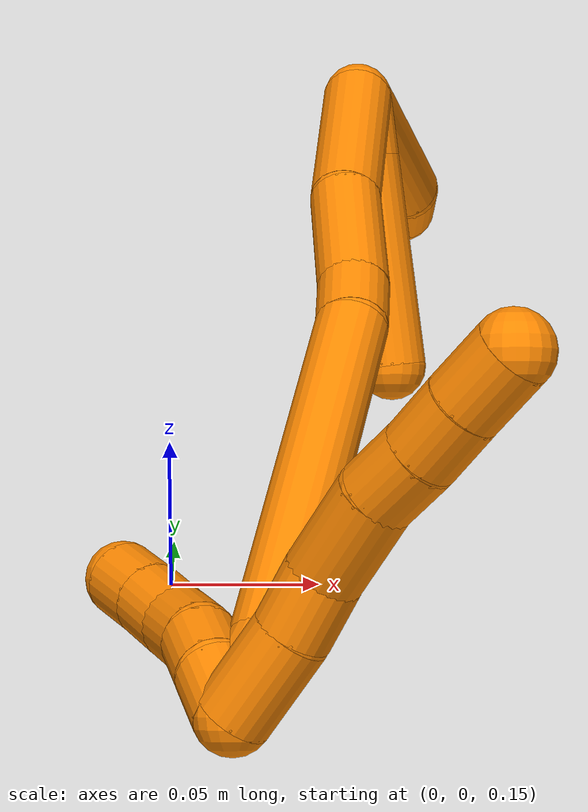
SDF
<sdf version="1.7">
 <world name="default">
  <model name="photoneo_s_sensor">
   <static>1</static>
   <pose>0 0 2 1.57079 1.57079 3.14159</pose>
   <link name="link">
    <inertial><mass>0.1</mass></inertial>
    <sensor name="sensor" type="depth">
     <update_rate>30</update_rate>
     <camera>
      <horizontal_fov>1.22</horizontal_fov>
      <image><width>1920</width><height>1200</height><format>B8G8R8</format></image>
      <clip><near>0.1</near><far>4</far></clip>
      <depth_camera><output>points</output></depth_camera>
     </camera>
     <plugin name="camera_plugin" filename="libgazebo_ros_depth_camera.so">
      <baseline>0.2</baseline>
      <alwaysOn>1</alwaysOn>
      <updateRate>0.0</updateRate>
      <cameraName>camera_ir</cameraName>
      <imageTopicName>/camera/color/image_raw</imageTopicName>
      <cameraInfoTopicName>/camera/color/camera_info</cameraInfoTopicName>
      <depthImageTopicName>/camera/depth/image_raw</depthImageTopicName>
      <depthImageCameraInfoTopicName>/camera/depth/camera_info</depthImageCameraInfoTopicName>
      <pointCloudTopicName>/camera/depth/points</pointCloudTopicName>
      <frameName>fr_optical</frameName>
      <pointCloudCutoff>0.1</pointCloudCutoff>
      <pointCloudCutoffMax>2.0</pointCloudCutoffMax>
      <distortionK1>0</distortionK1>
      <distortionK2>0</distortionK2>
      <distortionK3>0</distortionK3>
      <distortionT1>0</distortionT1>
      <distortionT2>0</distortionT2>
      <CxPrime>0</CxPrime>
      <Cx>0</Cx>
      <Cy>0</Cy>
      <focalLength>0</focalLength>
      <hackBaseline>0</hackBaseline>
     </plugin>
    </sensor>
   </link>
  </model>
  <model name="bin">
   <static>1</static>
   <link name="bottom">
    <collision name="collision-bottom">
     <pose>0 0 -0.01 0 -0 0</pose>
     <geometry><box><size>0.8 0.6 0.02</size></box></geometry>
     <surface>
      <friction><ode><mu>100</mu><mu2>100</mu2></ode></friction>
      <contact><collide_bitmask>65535</collide_bitmask></contact>
     </surface>
    </collision>
   </link>
   <link name="west_wall">
    <collision name="collision-west_wall">
     <pose>-0.41 0 0.1 0 -0 0</pose>
     <geometry><box><size>0.02 0.6 0.2</size></box></geometry>
     <surface>
      <friction><ode><mu>100</mu><mu2>100</mu2></ode></friction>
      <contact><collide_bitmask>65535</collide_bitmask></contact>
     </surface>
    </collision>
   </link>
   <link name="east_wall">
    <collision name="collision-east_wall">
     <pose>0.41 0 0.1 0 -0 0</pose>
     <geometry><box><size>0.02 0.6 0.2</size></box></geometry>
     <surface>
      <friction><ode><mu>100</mu><mu2>100</mu2></ode></friction>
      <contact><collide_bitmask>65535</collide_bitmask></contact>
     </surface>
    </collision>
   </link>
   <link name="south_wall">
    <collision name="collision-south_wall">
     <pose>0 -0.31 0.1 0 -0 0</pose>
     <geometry><box><size>0.8 0.02 0.2</size></box></geometry>
     <surface>
      <friction><ode><mu>100</mu><mu2>100</mu2></ode></friction>
      <contact><collide_bitmask>65535</collide_bitmask></contact>
     </surface>
    </collision>
   </link>
   <link name="north_wall">
    <collision name="collision-north_wall">
     <pose>0 0.31 0.1 0 -0 0</pose>
     <geometry><box><size>0.8 0.02 0.2</size></box></geometry>
     <surface>
      <friction><ode><mu>100</mu><mu2>100</mu2></ode></friction>
      <contact><collide_bitmask>65535</collide_bitmask></contact>
     </surface>
    </collision>
   </link>
  </model>
  <model name="19">
   <static>0</static>
   <link name="19">
    <collision name="collision-cylinder-e_1_2_8">
     <pose>0.010278 -0.002223 0.012351 0.178087 0.686203 0.063765</pose>
     <geometry><cylinder><radius>0.0125</radius><length>0.032442</length></cylinder></geometry>
     <surface>
      <friction><ode><mu>1.16</mu><mu2>1.16</mu2><slip1>0</slip1><slip2>0</slip2></ode></friction>
      <contact><ode><kp>1e+06</kp><kd>1</kd><max_vel>0</max_vel><min_depth>0.001</min_depth></ode></contact>
     </surface>
    </collision>
    <visual name="visual-cylinder-e_1_2_8">
     <pose>0.010278 -0.002223 0.012351 0.178087 0.686203 0.063765</pose>
     <geometry><cylinder><radius>0.0125</radius><length>0.032442</length></cylinder></geometry>
     <material><ambient>0.996078 0.537255 0 1</ambient></material>
    </visual>
    <collision name="collision-cylinder-e_2_8_9">
     <pose>0.026223 -0.006029 0.033402 0.180018 0.570023 0.052874</pose>
     <geometry><cylinder><radius>0.0125</radius><length>0.021007</length></cylinder></geometry>
     <surface>
      <friction><ode><mu>1.16</mu><mu2>1.16</mu2><slip1>0</slip1><slip2>0</slip2></ode></friction>
      <contact><ode><kp>1e+06</kp><kd>1</kd><max_vel>0</max_vel><min_depth>0.001</min_depth></ode></contact>
     </surface>
    </collision>
    <visual name="visual-cylinder-e_2_8_9">
     <pose>0.026223 -0.006029 0.033402 0.180018 0.570023 0.052874</pose>
     <geometry><cylinder><radius>0.0125</radius><length>0.021007</length></cylinder></geometry>
     <material><ambient>0.996078 0.537255 0 1</ambient></material>
    </visual>
    <collision name="collision-cylinder-e_3_9_10">
     <pose>0.042063 -0.013654 0.05333 0.493659 0.67336 0.175925</pose>
     <geometry><cylinder><radius>0.0125</radius><length>0.03262</length></cylinder></geometry>
     <surface>
      <friction><ode><mu>1.16</mu><mu2>1.16</mu2><slip1>0</slip1><slip2>0</slip2></ode></friction>
      <contact><ode><kp>1e+06</kp><kd>1</kd><max_vel>0</max_vel><min_depth>0.001</min_depth></ode></contact>
     </surface>
    </collision>
    <visual name="visual-cylinder-e_3_9_10">
     <pose>0.042063 -0.013654 0.05333 0.493659 0.67336 0.175925</pose>
     <geometry><cylinder><radius>0.0125</radius><length>0.03262</length></cylinder></geometry>
     <material><ambient>0.996078 0.537255 0 1</ambient></material>
    </visual>
    <collision name="collision-cylinder-e_4_10_11">
     <pose>0.060001 -0.022875 0.070379 0.499763 0.863955 0.234241</pose>
     <geometry><cylinder><radius>0.0125</radius><length>0.020427</length></cylinder></geometry>
     <surface>
      <friction><ode><mu>1.16</mu><mu2>1.16</mu2><slip1>0</slip1><slip2>0</slip2></ode></friction>
      <contact><ode><kp>1e+06</kp><kd>1</kd><max_vel>0</max_vel><min_depth>0.001</min_depth></ode></contact>
     </surface>
    </collision>
    <visual name="visual-cylinder-e_4_10_11">
     <pose>0.060001 -0.022875 0.070379 0.499763 0.863955 0.234241</pose>
     <geometry><cylinder><radius>0.0125</radius><length>0.020427</length></cylinder></geometry>
     <material><ambient>0.996078 0.537255 0 1</ambient></material>
    </visual>
    <collision name="collision-cylinder-e_5_11_12">
     <pose>0.075152 -0.029206 0.082787 0.446409 0.791041 0.18898</pose>
     <geometry><cylinder><radius>0.0125</radius><length>0.020771</length></cylinder></geometry>
     <surface>
      <friction><ode><mu>1.16</mu><mu2>1.16</mu2><slip1>0</slip1><slip2>0</slip2></ode></friction>
      <contact><ode><kp>1e+06</kp><kd>1</kd><max_vel>0</max_vel><min_depth>0.001</min_depth></ode></contact>
     </surface>
    </collision>
    <visual name="visual-cylinder-e_5_11_12">
     <pose>0.075152 -0.029206 0.082787 0.446409 0.791041 0.18898</pose>
     <geometry><cylinder><radius>0.0125</radius><length>0.020771</length></cylinder></geometry>
     <material><ambient>0.996078 0.537255 0 1</ambient></material>
    </visual>
    <collision name="collision-cylinder-e_6_12_6">
     <pose>0.0908 -0.035357 0.09658 0.394264 0.813865 0.171736</pose>
     <geometry><cylinder><radius>0.0125</radius><length>0.022733</length></cylinder></geometry>
     <surface>
      <friction><ode><mu>1.16</mu><mu2>1.16</mu2><slip1>0</slip1><slip2>0</slip2></ode></friction>
      <contact><ode><kp>1e+06</kp><kd>1</kd><max_vel>0</max_vel><min_depth>0.001</min_depth></ode></contact>
     </surface>
    </collision>
    <visual name="visual-cylinder-e_6_12_6">
     <pose>0.0908 -0.035357 0.09658 0.394264 0.813865 0.171736</pose>
     <geometry><cylinder><radius>0.0125</radius><length>0.022733</length></cylinder></geometry>
     <material><ambient>0.996078 0.537255 0 1</ambient></material>
    </visual>
    <collision name="collision-cylinder-e_1_2_13">
     <pose>-0.005177 0.005877 0.006217 -0.757299 -0.544128 0.221079</pose>
     <geometry><cylinder><radius>0.0125</radius><length>0.02</length></cylinder></geometry>
     <surface>
      <friction><ode><mu>1.16</mu><mu2>1.16</mu2><slip1>0</slip1><slip2>0</slip2></ode></friction>
      <contact><ode><kp>1e+06</kp><kd>1</kd><max_vel>0</max_vel><min_depth>0.001</min_depth></ode></contact>
     </surface>
    </collision>
    <visual name="visual-cylinder-e_1_2_13">
     <pose>-0.005177 0.005877 0.006217 -0.757299 -0.544128 0.221079</pose>
     <geometry><cylinder><radius>0.0125</radius><length>0.02</length></cylinder></geometry>
     <material><ambient>0.996078 0.537255 0 1</ambient></material>
    </visual>
    <collision name="collision-cylinder-e_2_13_14">
     <pose>-0.015445 0.018852 0.017304 -0.969454 -0.534157 0.28622</pose>
     <geometry><cylinder><radius>0.0125</radius><length>0.02</length></cylinder></geometry>
     <surface>
      <friction><ode><mu>1.16</mu><mu2>1.16</mu2><slip1>0</slip1><slip2>0</slip2></ode></friction>
      <contact><ode><kp>1e+06</kp><kd>1</kd><max_vel>0</max_vel><min_depth>0.001</min_depth></ode></contact>
     </surface>
    </collision>
    <visual name="visual-cylinder-e_2_13_14">
     <pose>-0.015445 0.018852 0.017304 -0.969454 -0.534157 0.28622</pose>
     <geometry><cylinder><radius>0.0125</radius><length>0.02</length></cylinder></geometry>
     <material><ambient>0.996078 0.537255 0 1</ambient></material>
    </visual>
    <collision name="collision-cylinder-e_3_14_15">
     <pose>-0.026922 0.033214 0.024712 -1.23471 -0.692679 0.501615</pose>
     <geometry><cylinder><radius>0.0125</radius><length>0.02</length></cylinder></geometry>
     <surface>
      <friction><ode><mu>1.16</mu><mu2>1.16</mu2><slip1>0</slip1><slip2>0</slip2></ode></friction>
      <contact><ode><kp>1e+06</kp><kd>1</kd><max_vel>0</max_vel><min_depth>0.001</min_depth></ode></contact>
     </surface>
    </collision>
    <visual name="visual-cylinder-e_3_14_15">
     <pose>-0.026922 0.033214 0.024712 -1.23471 -0.692679 0.501615</pose>
     <geometry><cylinder><radius>0.0125</radius><length>0.02</length></cylinder></geometry>
     <material><ambient>0.996078 0.537255 0 1</ambient></material>
    </visual>
    <collision name="collision-cylinder-e_4_15_16">
     <pose>-0.040396 0.046494 0.030934 -1.02119 -0.787852 0.457497</pose>
     <geometry><cylinder><radius>0.0125</radius><length>0.02</length></cylinder></geometry>
     <surface>
      <friction><ode><mu>1.16</mu><mu2>1.16</mu2><slip1>0</slip1><slip2>0</slip2></ode></friction>
      <contact><ode><kp>1e+06</kp><kd>1</kd><max_vel>0</max_vel><min_depth>0.001</min_depth></ode></contact>
     </surface>
    </collision>
    <visual name="visual-cylinder-e_4_15_16">
     <pose>-0.040396 0.046494 0.030934 -1.02119 -0.787852 0.457497</pose>
     <geometry><cylinder><radius>0.0125</radius><length>0.02</length></cylinder></geometry>
     <material><ambient>0.996078 0.537255 0 1</ambient></material>
    </visual>
    <collision name="collision-cylinder-e_5_16_5">
     <pose>-0.054818 0.058333 0.038125 -1.02879 -0.82328 0.4838</pose>
     <geometry><cylinder><radius>0.0125</radius><length>0.02</length></cylinder></geometry>
     <surface>
      <friction><ode><mu>1.16</mu><mu2>1.16</mu2><slip1>0</slip1><slip2>0</slip2></ode></friction>
      <contact><ode><kp>1e+06</kp><kd>1</kd><max_vel>0</max_vel><min_depth>0.001</min_depth></ode></contact>
     </surface>
    </collision>
    <visual name="visual-cylinder-e_5_16_5">
     <pose>-0.054818 0.058333 0.038125 -1.02879 -0.82328 0.4838</pose>
     <geometry><cylinder><radius>0.0125</radius><length>0.02</length></cylinder></geometry>
     <material><ambient>0.996078 0.537255 0 1</ambient></material>
    </visual>
    <collision name="collision-cylinder-e_1_2_17">
     <pose>0.001271 0.011424 0.010228 -0.840574 0.082672 -0.036964</pose>
     <geometry><cylinder><radius>0.0125</radius><length>0.030772</length></cylinder></geometry>
     <surface>
      <friction><ode><mu>1.16</mu><mu2>1.16</mu2><slip1>0</slip1><slip2>0</slip2></ode></friction>
      <contact><ode><kp>1e+06</kp><kd>1</kd><max_vel>0</max_vel><min_depth>0.001</min_depth></ode></contact>
     </surface>
    </collision>
    <visual name="visual-cylinder-e_1_2_17">
     <pose>0.001271 0.011424 0.010228 -0.840574 0.082672 -0.036964</pose>
     <geometry><cylinder><radius>0.0125</radius><length>0.030772</length></cylinder></geometry>
     <material><ambient>0.996078 0.537255 0 1</ambient></material>
    </visual>
    <collision name="collision-cylinder-e_2_17_18">
     <pose>0.00193 0.067509 0.073453 -0.700251 -0.008819 0.00322</pose>
     <geometry><cylinder><radius>0.0125</radius><length>0.138617</length></cylinder></geometry>
     <surface>
      <friction><ode><mu>1.16</mu><mu2>1.16</mu2><slip1>0</slip1><slip2>0</slip2></ode></friction>
      <contact><ode><kp>1e+06</kp><kd>1</kd><max_vel>0</max_vel><min_depth>0.001</min_depth></ode></contact>
     </surface>
    </collision>
    <visual name="visual-cylinder-e_2_17_18">
     <pose>0.00193 0.067509 0.073453 -0.700251 -0.008819 0.00322</pose>
     <geometry><cylinder><radius>0.0125</radius><length>0.138617</length></cylinder></geometry>
     <material><ambient>0.996078 0.537255 0 1</ambient></material>
    </visual>
    <collision name="collision-cylinder-e_3_18_19">
     <pose>-0.000678 0.119306 0.133658 -0.780349 -0.194389 0.080154</pose>
     <geometry><cylinder><radius>0.0125</radius><length>0.020676</length></cylinder></geometry>
     <surface>
      <friction><ode><mu>1.16</mu><mu2>1.16</mu2><slip1>0</slip1><slip2>0</slip2></ode></friction>
      <contact><ode><kp>1e+06</kp><kd>1</kd><max_vel>0</max_vel><min_depth>0.001</min_depth></ode></contact>
     </surface>
    </collision>
    <visual name="visual-cylinder-e_3_18_19">
     <pose>-0.000678 0.119306 0.133658 -0.780349 -0.194389 0.080154</pose>
     <geometry><cylinder><radius>0.0125</radius><length>0.020676</length></cylinder></geometry>
     <material><ambient>0.996078 0.537255 0 1</ambient></material>
    </visual>
    <collision name="collision-cylinder-e_4_19_20">
     <pose>-0.008682 0.140467 0.158136 -0.682081 -0.263725 0.094075</pose>
     <geometry><cylinder><radius>0.0125</radius><length>0.046087</length></cylinder></geometry>
     <surface>
      <friction><ode><mu>1.16</mu><mu2>1.16</mu2><slip1>0</slip1><slip2>0</slip2></ode></friction>
      <contact><ode><kp>1e+06</kp><kd>1</kd><max_vel>0</max_vel><min_depth>0.001</min_depth></ode></contact>
     </surface>
    </collision>
    <visual name="visual-cylinder-e_4_19_20">
     <pose>-0.008682 0.140467 0.158136 -0.682081 -0.263725 0.094075</pose>
     <geometry><cylinder><radius>0.0125</radius><length>0.046087</length></cylinder></geometry>
     <material><ambient>0.996078 0.537255 0 1</ambient></material>
    </visual>
    <collision name="collision-cylinder-e_5_20_1">
     <pose>-0.019785 0.177199 0.197258 -0.804595 -0.160317 0.068335</pose>
     <geometry><cylinder><radius>0.0125</radius><length>0.063848</length></cylinder></geometry>
     <surface>
      <friction><ode><mu>1.16</mu><mu2>1.16</mu2><slip1>0</slip1><slip2>0</slip2></ode></friction>
      <contact><ode><kp>1e+06</kp><kd>1</kd><max_vel>0</max_vel><min_depth>0.001</min_depth></ode></contact>
     </surface>
    </collision>
    <visual name="visual-cylinder-e_5_20_1">
     <pose>-0.019785 0.177199 0.197258 -0.804595 -0.160317 0.068335</pose>
     <geometry><cylinder><radius>0.0125</radius><length>0.063848</length></cylinder></geometry>
     <material><ambient>0.996078 0.537255 0 1</ambient></material>
    </visual>
    <collision name="collision-cylinder-e_1_1_21">
     <pose>-0.023794 0.200888 0.207882 -3.05448 0.096209 -1.67007</pose>
     <geometry><cylinder><radius>0.0125</radius><length>0.022647</length></cylinder></geometry>
     <surface>
      <friction><ode><mu>1.16</mu><mu2>1.16</mu2><slip1>0</slip1><slip2>0</slip2></ode></friction>
      <contact><ode><kp>1e+06</kp><kd>1</kd><max_vel>0</max_vel><min_depth>0.001</min_depth></ode></contact>
     </surface>
    </collision>
    <visual name="visual-cylinder-e_1_1_21">
     <pose>-0.023794 0.200888 0.207882 -3.05448 0.096209 -1.67007</pose>
     <geometry><cylinder><radius>0.0125</radius><length>0.022647</length></cylinder></geometry>
     <material><ambient>0.996078 0.537255 0 1</ambient></material>
    </visual>
    <collision name="collision-cylinder-e_2_21_4">
     <pose>-0.018989 0.205286 0.158308 -3.05272 0.096254 -1.65056</pose>
     <geometry><cylinder><radius>0.0125</radius><length>0.077353</length></cylinder></geometry>
     <surface>
      <friction><ode><mu>1.16</mu><mu2>1.16</mu2><slip1>0</slip1><slip2>0</slip2></ode></friction>
      <contact><ode><kp>1e+06</kp><kd>1</kd><max_vel>0</max_vel><min_depth>0.001</min_depth></ode></contact>
     </surface>
    </collision>
    <visual name="visual-cylinder-e_2_21_4">
     <pose>-0.018989 0.205286 0.158308 -3.05272 0.096254 -1.65056</pose>
     <geometry><cylinder><radius>0.0125</radius><length>0.077353</length></cylinder></geometry>
     <material><ambient>0.996078 0.537255 0 1</ambient></material>
    </visual>
    <collision name="collision-cylinder-e_1_1_22">
     <pose>-0.026846 0.235712 0.206777 -1.90251 -0.051844 0.072675</pose>
     <geometry><cylinder><radius>0.0125</radius><length>0.075841</length></cylinder></geometry>
     <surface>
      <friction><ode><mu>1.16</mu><mu2>1.16</mu2><slip1>0</slip1><slip2>0</slip2></ode></friction>
      <contact><ode><kp>1e+06</kp><kd>1</kd><max_vel>0</max_vel><min_depth>0.001</min_depth></ode></contact>
     </surface>
    </collision>
    <visual name="visual-cylinder-e_1_1_22">
     <pose>-0.026846 0.235712 0.206777 -1.90251 -0.051844 0.072675</pose>
     <geometry><cylinder><radius>0.0125</radius><length>0.075841</length></cylinder></geometry>
     <material><ambient>0.996078 0.537255 0 1</ambient></material>
    </visual>
    <collision name="collision-cylinder-e_2_22_3">
     <pose>-0.033066 0.282509 0.191797 -1.80716 -0.359917 0.453942</pose>
     <geometry><cylinder><radius>0.0125</radius><length>0.024159</length></cylinder></geometry>
     <surface>
      <friction><ode><mu>1.16</mu><mu2>1.16</mu2><slip1>0</slip1><slip2>0</slip2></ode></friction>
      <contact><ode><kp>1e+06</kp><kd>1</kd><max_vel>0</max_vel><min_depth>0.001</min_depth></ode></contact>
     </surface>
    </collision>
    <visual name="visual-cylinder-e_2_22_3">
     <pose>-0.033066 0.282509 0.191797 -1.80716 -0.359917 0.453942</pose>
     <geometry><cylinder><radius>0.0125</radius><length>0.024159</length></cylinder></geometry>
     <material><ambient>0.996078 0.537255 0 1</ambient></material>
    </visual>
    <collision name="collision-sphere-3">
     <pose>-0.03732 0.2935 0.189149 0 -0 0</pose>
     <geometry><sphere><radius>0.0125</radius></sphere></geometry>
     <surface>
      <friction><ode><mu>1.16</mu><mu2>1.16</mu2><slip1>0</slip1><slip2>0</slip2></ode></friction>
      <contact><ode><kp>1e+06</kp><kd>1</kd><max_vel>0</max_vel><min_depth>0.001</min_depth></ode></contact>
     </surface>
    </collision>
    <visual name="visual-sphere-3">
     <pose>-0.03732 0.2935 0.189149 0 -0 0</pose>
     <geometry><sphere><radius>0.0125</radius></sphere></geometry>
     <material><ambient>0.996078 0.537255 0 1</ambient></material>
    </visual>
    <collision name="collision-sphere-22">
     <pose>-0.028811 0.271517 0.194444 0 -0 0</pose>
     <geometry><sphere><radius>0.0125</radius></sphere></geometry>
     <surface>
      <friction><ode><mu>1.16</mu><mu2>1.16</mu2><slip1>0</slip1><slip2>0</slip2></ode></friction>
      <contact><ode><kp>1e+06</kp><kd>1</kd><max_vel>0</max_vel><min_depth>0.001</min_depth></ode></contact>
     </surface>
    </collision>
    <visual name="visual-sphere-22">
     <pose>-0.028811 0.271517 0.194444 0 -0 0</pose>
     <geometry><sphere><radius>0.0125</radius></sphere></geometry>
     <material><ambient>0.996078 0.537255 0 1</ambient></material>
    </visual>
    <collision name="collision-sphere-4">
     <pose>-0.015272 0.208703 0.119962 0 -0 0</pose>
     <geometry><sphere><radius>0.0125</radius></sphere></geometry>
     <surface>
      <friction><ode><mu>1.16</mu><mu2>1.16</mu2><slip1>0</slip1><slip2>0</slip2></ode></friction>
      <contact><ode><kp>1e+06</kp><kd>1</kd><max_vel>0</max_vel><min_depth>0.001</min_depth></ode></contact>
     </surface>
    </collision>
    <visual name="visual-sphere-4">
     <pose>-0.015272 0.208703 0.119962 0 -0 0</pose>
     <geometry><sphere><radius>0.0125</radius></sphere></geometry>
     <material><ambient>0.996078 0.537255 0 1</ambient></material>
    </visual>
    <collision name="collision-sphere-21">
     <pose>-0.022706 0.201869 0.196653 0 -0 0</pose>
     <geometry><sphere><radius>0.0125</radius></sphere></geometry>
     <surface>
      <friction><ode><mu>1.16</mu><mu2>1.16</mu2><slip1>0</slip1><slip2>0</slip2></ode></friction>
      <contact><ode><kp>1e+06</kp><kd>1</kd><max_vel>0</max_vel><min_depth>0.001</min_depth></ode></contact>
     </surface>
    </collision>
    <visual name="visual-sphere-21">
     <pose>-0.022706 0.201869 0.196653 0 -0 0</pose>
     <geometry><sphere><radius>0.0125</radius></sphere></geometry>
     <material><ambient>0.996078 0.537255 0 1</ambient></material>
    </visual>
    <collision name="collision-sphere-1">
     <pose>-0.024881 0.199907 0.21911 0 -0 0</pose>
     <geometry><sphere><radius>0.0125</radius></sphere></geometry>
     <surface>
      <friction><ode><mu>1.16</mu><mu2>1.16</mu2><slip1>0</slip1><slip2>0</slip2></ode></friction>
      <contact><ode><kp>1e+06</kp><kd>1</kd><max_vel>0</max_vel><min_depth>0.001</min_depth></ode></contact>
     </surface>
    </collision>
    <visual name="visual-sphere-1">
     <pose>-0.024881 0.199907 0.21911 0 -0 0</pose>
     <geometry><sphere><radius>0.0125</radius></sphere></geometry>
     <material><ambient>0.996078 0.537255 0 1</ambient></material>
    </visual>
    <collision name="collision-sphere-12">
     <pose>0.082537 -0.032359 0.089374 0 -0 0</pose>
     <geometry><sphere><radius>0.0125</radius></sphere></geometry>
     <surface>
      <friction><ode><mu>1.16</mu><mu2>1.16</mu2><slip1>0</slip1><slip2>0</slip2></ode></friction>
      <contact><ode><kp>1e+06</kp><kd>1</kd><max_vel>0</max_vel><min_depth>0.001</min_depth></ode></contact>
     </surface>
    </collision>
    <visual name="visual-sphere-12">
     <pose>0.082537 -0.032359 0.089374 0 -0 0</pose>
     <geometry><sphere><radius>0.0125</radius></sphere></geometry>
     <material><ambient>0.996078 0.537255 0 1</ambient></material>
    </visual>
    <collision name="collision-sphere-11">
     <pose>0.067767 -0.026053 0.076201 0 -0 0</pose>
     <geometry><sphere><radius>0.0125</radius></sphere></geometry>
     <surface>
      <friction><ode><mu>1.16</mu><mu2>1.16</mu2><slip1>0</slip1><slip2>0</slip2></ode></friction>
      <contact><ode><kp>1e+06</kp><kd>1</kd><max_vel>0</max_vel><min_depth>0.001</min_depth></ode></contact>
     </surface>
    </collision>
    <visual name="visual-sphere-11">
     <pose>0.067767 -0.026053 0.076201 0 -0 0</pose>
     <geometry><sphere><radius>0.0125</radius></sphere></geometry>
     <material><ambient>0.996078 0.537255 0 1</ambient></material>
    </visual>
    <collision name="collision-sphere-10">
     <pose>0.052234 -0.019696 0.064557 0 -0 0</pose>
     <geometry><sphere><radius>0.0125</radius></sphere></geometry>
     <surface>
      <friction><ode><mu>1.16</mu><mu2>1.16</mu2><slip1>0</slip1><slip2>0</slip2></ode></friction>
      <contact><ode><kp>1e+06</kp><kd>1</kd><max_vel>0</max_vel><min_depth>0.001</min_depth></ode></contact>
     </surface>
    </collision>
    <visual name="visual-sphere-10">
     <pose>0.052234 -0.019696 0.064557 0 -0 0</pose>
     <geometry><sphere><radius>0.0125</radius></sphere></geometry>
     <material><ambient>0.996078 0.537255 0 1</ambient></material>
    </visual>
    <collision name="collision-sphere-9">
     <pose>0.031892 -0.007613 0.042102 0 -0 0</pose>
     <geometry><sphere><radius>0.0125</radius></sphere></geometry>
     <surface>
      <friction><ode><mu>1.16</mu><mu2>1.16</mu2><slip1>0</slip1><slip2>0</slip2></ode></friction>
      <contact><ode><kp>1e+06</kp><kd>1</kd><max_vel>0</max_vel><min_depth>0.001</min_depth></ode></contact>
     </surface>
    </collision>
    <visual name="visual-sphere-9">
     <pose>0.031892 -0.007613 0.042102 0 -0 0</pose>
     <geometry><sphere><radius>0.0125</radius></sphere></geometry>
     <material><ambient>0.996078 0.537255 0 1</ambient></material>
    </visual>
    <collision name="collision-sphere-2">
     <geometry><sphere><radius>0.0125</radius></sphere></geometry>
     <surface>
      <friction><ode><mu>1.16</mu><mu2>1.16</mu2><slip1>0</slip1><slip2>0</slip2></ode></friction>
      <contact><ode><kp>1e+06</kp><kd>1</kd><max_vel>0</max_vel><min_depth>0.001</min_depth></ode></contact>
     </surface>
    </collision>
    <visual name="visual-sphere-2">
     <geometry><sphere><radius>0.0125</radius></sphere></geometry>
     <material><ambient>0.996078 0.537255 0 1</ambient></material>
    </visual>
    <collision name="collision-sphere-19">
     <pose>-0.002675 0.126442 0.140867 0 -0 0</pose>
     <geometry><sphere><radius>0.0125</radius></sphere></geometry>
     <surface>
      <friction><ode><mu>1.16</mu><mu2>1.16</mu2><slip1>0</slip1><slip2>0</slip2></ode></friction>
      <contact><ode><kp>1e+06</kp><kd>1</kd><max_vel>0</max_vel><min_depth>0.001</min_depth></ode></contact>
     </surface>
    </collision>
    <visual name="visual-sphere-19">
     <pose>-0.002675 0.126442 0.140867 0 -0 0</pose>
     <geometry><sphere><radius>0.0125</radius></sphere></geometry>
     <material><ambient>0.996078 0.537255 0 1</ambient></material>
    </visual>
    <collision name="collision-sphere-8">
     <pose>0.020555 -0.004446 0.024702 0 -0 0</pose>
     <geometry><sphere><radius>0.0125</radius></sphere></geometry>
     <surface>
      <friction><ode><mu>1.16</mu><mu2>1.16</mu2><slip1>0</slip1><slip2>0</slip2></ode></friction>
      <contact><ode><kp>1e+06</kp><kd>1</kd><max_vel>0</max_vel><min_depth>0.001</min_depth></ode></contact>
     </surface>
    </collision>
    <visual name="visual-sphere-8">
     <pose>0.020555 -0.004446 0.024702 0 -0 0</pose>
     <geometry><sphere><radius>0.0125</radius></sphere></geometry>
     <material><ambient>0.996078 0.537255 0 1</ambient></material>
    </visual>
    <collision name="collision-sphere-6">
     <pose>0.099063 -0.038355 0.103787 0 -0 0</pose>
     <geometry><sphere><radius>0.0125</radius></sphere></geometry>
     <surface>
      <friction><ode><mu>1.16</mu><mu2>1.16</mu2><slip1>0</slip1><slip2>0</slip2></ode></friction>
      <contact><ode><kp>1e+06</kp><kd>1</kd><max_vel>0</max_vel><min_depth>0.001</min_depth></ode></contact>
     </surface>
    </collision>
    <visual name="visual-sphere-6">
     <pose>0.099063 -0.038355 0.103787 0 -0 0</pose>
     <geometry><sphere><radius>0.0125</radius></sphere></geometry>
     <material><ambient>0.996078 0.537255 0 1</ambient></material>
    </visual>
    <collision name="collision-sphere-13">
     <pose>-0.010353 0.011755 0.012435 0 -0 0</pose>
     <geometry><sphere><radius>0.0125</radius></sphere></geometry>
     <surface>
      <friction><ode><mu>1.16</mu><mu2>1.16</mu2><slip1>0</slip1><slip2>0</slip2></ode></friction>
      <contact><ode><kp>1e+06</kp><kd>1</kd><max_vel>0</max_vel><min_depth>0.001</min_depth></ode></contact>
     </surface>
    </collision>
    <visual name="visual-sphere-13">
     <pose>-0.010353 0.011755 0.012435 0 -0 0</pose>
     <geometry><sphere><radius>0.0125</radius></sphere></geometry>
     <material><ambient>0.996078 0.537255 0 1</ambient></material>
    </visual>
    <collision name="collision-sphere-14">
     <pose>-0.020536 0.025949 0.022174 0 -0 0</pose>
     <geometry><sphere><radius>0.0125</radius></sphere></geometry>
     <surface>
      <friction><ode><mu>1.16</mu><mu2>1.16</mu2><slip1>0</slip1><slip2>0</slip2></ode></friction>
      <contact><ode><kp>1e+06</kp><kd>1</kd><max_vel>0</max_vel><min_depth>0.001</min_depth></ode></contact>
     </surface>
    </collision>
    <visual name="visual-sphere-14">
     <pose>-0.020536 0.025949 0.022174 0 -0 0</pose>
     <geometry><sphere><radius>0.0125</radius></sphere></geometry>
     <material><ambient>0.996078 0.537255 0 1</ambient></material>
    </visual>
    <collision name="collision-sphere-15">
     <pose>-0.033308 0.040479 0.027249 0 -0 0</pose>
     <geometry><sphere><radius>0.0125</radius></sphere></geometry>
     <surface>
      <friction><ode><mu>1.16</mu><mu2>1.16</mu2><slip1>0</slip1><slip2>0</slip2></ode></friction>
      <contact><ode><kp>1e+06</kp><kd>1</kd><max_vel>0</max_vel><min_depth>0.001</min_depth></ode></contact>
     </surface>
    </collision>
    <visual name="visual-sphere-15">
     <pose>-0.033308 0.040479 0.027249 0 -0 0</pose>
     <geometry><sphere><radius>0.0125</radius></sphere></geometry>
     <material><ambient>0.996078 0.537255 0 1</ambient></material>
    </visual>
    <collision name="collision-sphere-16">
     <pose>-0.047485 0.052509 0.034618 0 -0 0</pose>
     <geometry><sphere><radius>0.0125</radius></sphere></geometry>
     <surface>
      <friction><ode><mu>1.16</mu><mu2>1.16</mu2><slip1>0</slip1><slip2>0</slip2></ode></friction>
      <contact><ode><kp>1e+06</kp><kd>1</kd><max_vel>0</max_vel><min_depth>0.001</min_depth></ode></contact>
     </surface>
    </collision>
    <visual name="visual-sphere-16">
     <pose>-0.047485 0.052509 0.034618 0 -0 0</pose>
     <geometry><sphere><radius>0.0125</radius></sphere></geometry>
     <material><ambient>0.996078 0.537255 0 1</ambient></material>
    </visual>
    <collision name="collision-sphere-5">
     <pose>-0.062152 0.064156 0.041632 0 -0 0</pose>
     <geometry><sphere><radius>0.0125</radius></sphere></geometry>
     <surface>
      <friction><ode><mu>1.16</mu><mu2>1.16</mu2><slip1>0</slip1><slip2>0</slip2></ode></friction>
      <contact><ode><kp>1e+06</kp><kd>1</kd><max_vel>0</max_vel><min_depth>0.001</min_depth></ode></contact>
     </surface>
    </collision>
    <visual name="visual-sphere-5">
     <pose>-0.062152 0.064156 0.041632 0 -0 0</pose>
     <geometry><sphere><radius>0.0125</radius></sphere></geometry>
     <material><ambient>0.996078 0.537255 0 1</ambient></material>
    </visual>
    <collision name="collision-sphere-17">
     <pose>0.002541 0.022848 0.020456 0 -0 0</pose>
     <geometry><sphere><radius>0.0125</radius></sphere></geometry>
     <surface>
      <friction><ode><mu>1.16</mu><mu2>1.16</mu2><slip1>0</slip1><slip2>0</slip2></ode></friction>
      <contact><ode><kp>1e+06</kp><kd>1</kd><max_vel>0</max_vel><min_depth>0.001</min_depth></ode></contact>
     </surface>
    </collision>
    <visual name="visual-sphere-17">
     <pose>0.002541 0.022848 0.020456 0 -0 0</pose>
     <geometry><sphere><radius>0.0125</radius></sphere></geometry>
     <material><ambient>0.996078 0.537255 0 1</ambient></material>
    </visual>
    <collision name="collision-sphere-18">
     <pose>0.001319 0.11217 0.126449 0 -0 0</pose>
     <geometry><sphere><radius>0.0125</radius></sphere></geometry>
     <surface>
      <friction><ode><mu>1.16</mu><mu2>1.16</mu2><slip1>0</slip1><slip2>0</slip2></ode></friction>
      <contact><ode><kp>1e+06</kp><kd>1</kd><max_vel>0</max_vel><min_depth>0.001</min_depth></ode></contact>
     </surface>
    </collision>
    <visual name="visual-sphere-18">
     <pose>0.001319 0.11217 0.126449 0 -0 0</pose>
     <geometry><sphere><radius>0.0125</radius></sphere></geometry>
     <material><ambient>0.996078 0.537255 0 1</ambient></material>
    </visual>
    <collision name="collision-sphere-20">
     <pose>-0.014689 0.154492 0.175405 0 -0 0</pose>
     <geometry><sphere><radius>0.0125</radius></sphere></geometry>
     <surface>
      <friction><ode><mu>1.16</mu><mu2>1.16</mu2><slip1>0</slip1><slip2>0</slip2></ode></friction>
      <contact><ode><kp>1e+06</kp><kd>1</kd><max_vel>0</max_vel><min_depth>0.001</min_depth></ode></contact>
     </surface>
    </collision>
    <visual name="visual-sphere-20">
     <pose>-0.014689 0.154492 0.175405 0 -0 0</pose>
     <geometry><sphere><radius>0.0125</radius></sphere></geometry>
     <material><ambient>0.996078 0.537255 0 1</ambient></material>
    </visual>
    <inertial>
     <pose>-0.002615 0.101104 0.107937 0 -0 0</pose>
     <mass>0.75</mass>
     <inertia>
      <ixx>0.000288</ixx>
      <ixy>0</ixy>
      <ixz>0</ixz>
      <iyy>0.000206</iyy>
      <iyz>0</iyz>
      <izz>-0.000197</izz>
     </inertia>
    </inertial>
   </link>
   <pose>0.020833 -0.123903 0.148063 -0.291546 -0.107025 -0.342588</pose>
  </model>
 </world>
</sdf>
